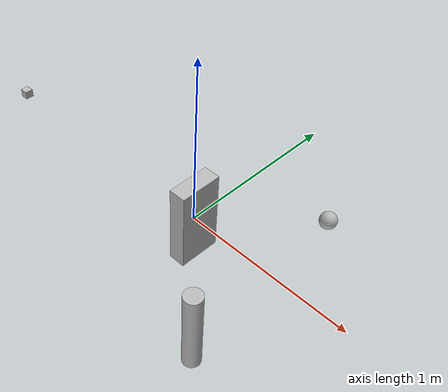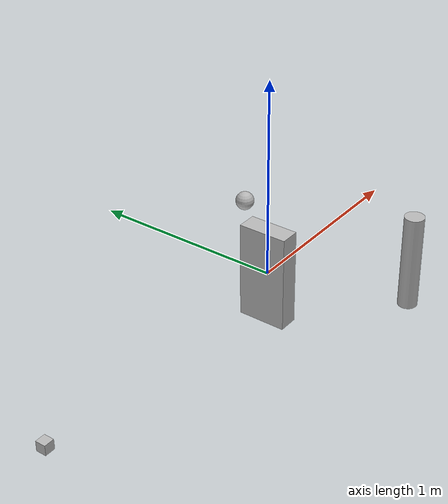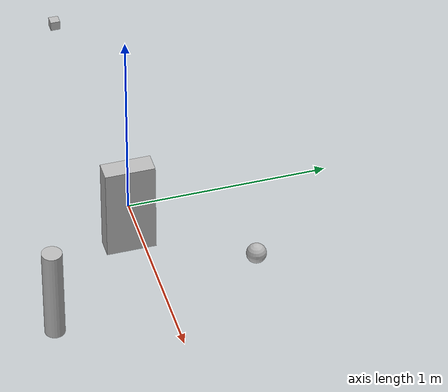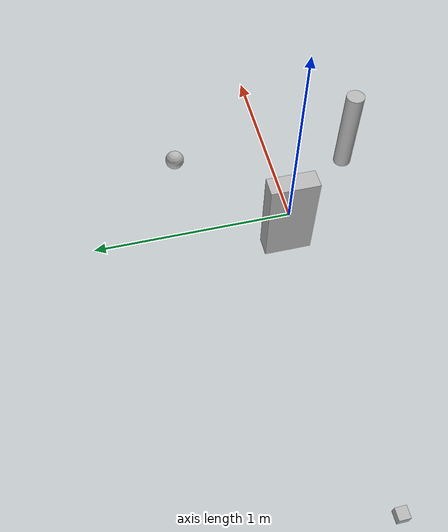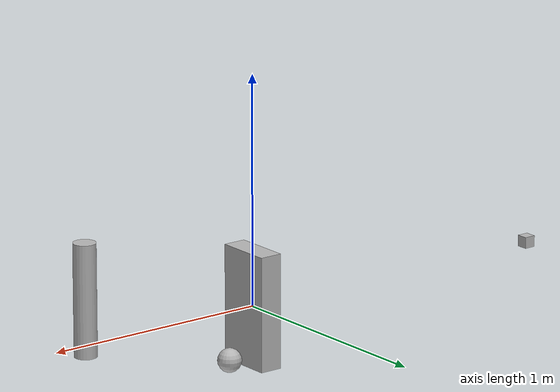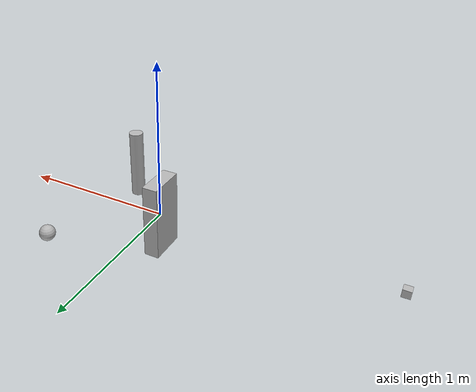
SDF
<?xml version="1.0" encoding="UTF-8"?>
<sdf version="1.6">
  <world name="ray_sensor_demo">
    <gravity>0 0 0</gravity>

    <include>
      <uri>model://sun</uri>
    </include>

    <model name="ray_sensor_box">
      <pose>-1.5 0.0 0.0 0.0 0.0 0.0</pose>
      <link name="ray_link">
        <visual name="visual_box">
          <geometry>
            <box>
              <size>0.05 0.05 0.05</size>
            </box>
          </geometry>
        </visual>
        <collision name="collision_box">
          <geometry>
            <box>
              <size>0.05 0.05 0.05</size>
            </box>
          </geometry>
          <laser_retro>100.0</laser_retro>
        </collision>

        <!-- ray sensor -->
        <sensor name="sensor_ray" type="ray">
          <ray>
            <scan>
              <horizontal>
                <samples>300</samples>
                <resolution>1.0</resolution>
                <min_angle>-0.5236</min_angle>
                <max_angle>0.5236</max_angle>
              </horizontal>
              <vertical>
                <samples>100</samples>
                <resolution>1.0</resolution>
                <min_angle>-0.5236</min_angle>
                <max_angle>0.5236</max_angle>
              </vertical>
            </scan>
            <range>
              <min>0.05</min>
              <max>50.0</max>
            </range>
          </ray>
          <always_on>true</always_on>
          <update_rate>1.0</update_rate>
          <plugin name="pc2" filename="libgazebo_ros_ray_sensor.so">
            <ros>
              <namespace>/ray</namespace>
              <remapping>~/out:=pointcloud2</remapping>
            </ros>
            <output_type>sensor_msgs/PointCloud2</output_type>
          </plugin>
          <plugin name="pc" filename="libgazebo_ros_ray_sensor.so">
            <ros>
              <namespace>/ray</namespace>
              <remapping>~/out:=pointcloud</remapping>
            </ros>
            <output_type>sensor_msgs/PointCloud</output_type>
          </plugin>
          <plugin name="laserscan" filename="libgazebo_ros_ray_sensor.so">
            <ros>
              <namespace>/ray</namespace>
              <remapping>~/out:=laserscan</remapping>
            </ros>
            <output_type>sensor_msgs/LaserScan</output_type>
          </plugin>
          <plugin name="range" filename="libgazebo_ros_ray_sensor.so">
            <ros>
              <namespace>/ray</namespace>
              <remapping>~/out:=range</remapping>
            </ros>
            <output_type>sensor_msgs/Range</output_type>
          </plugin>
        </sensor>

        <!-- gpu_ray sensor producing PointCloud / LaserScan -->
        <sensor name="sensor_gpu_ray" type="gpu_ray">
          <ray>
            <scan>
              <horizontal>
                <samples>300</samples>
                <resolution>1.0</resolution>
                <min_angle>-0.5236</min_angle>
                <max_angle>0.5236</max_angle>
              </horizontal>
            </scan>
            <range>
              <min>0.05</min>
              <max>50.0</max>
            </range>
          </ray>
          <always_on>true</always_on>
          <update_rate>1.0</update_rate>
          <plugin name="pc2_gpu" filename="libgazebo_ros_ray_sensor.so">
            <ros>
              <namespace>/gpu_ray</namespace>
              <remapping>~/out:=pointcloud2</remapping>
            </ros>
            <output_type>sensor_msgs/PointCloud2</output_type>
          </plugin>
          <plugin name="pc_gpu" filename="libgazebo_ros_ray_sensor.so">
            <ros>
              <namespace>/gpu_ray</namespace>
              <remapping>~/out:=pointcloud</remapping>
            </ros>
            <output_type>sensor_msgs/PointCloud</output_type>
          </plugin>
          <plugin name="laserscan_gpu" filename="libgazebo_ros_ray_sensor.so">
            <ros>
              <namespace>/gpu_ray</namespace>
              <remapping>~/out:=laserscan</remapping>
            </ros>
            <output_type>sensor_msgs/LaserScan</output_type>
          </plugin>
          <plugin name="range_gpu" filename="libgazebo_ros_ray_sensor.so">
            <ros>
              <namespace>/gpu_ray</namespace>
              <remapping>~/out:=range</remapping>
            </ros>
            <output_type>sensor_msgs/Range</output_type>
          </plugin>
        </sensor>

      </link>
    </model>

    <model name="box">
      <pose>0.0 0.0 0.0 0.0 0.0 0.0</pose>
      <link name="base_link">
        <visual name="visual">
          <geometry>
            <box>
              <size>0.1 0.25 0.5</size>
            </box>
          </geometry>
        </visual>
        <collision name="collision">
          <geometry>
            <box>
              <size>0.1 0.25 0.5</size>
            </box>
          </geometry>
          <laser_retro>100.0</laser_retro>
        </collision>
      </link>
    </model>

    <model name="sphere">
      <pose>0.5 0.5 0.0 0.0 0.0 0.0</pose>
      <link name="base_link">
        <visual name="visual">
          <geometry>
            <sphere>
              <radius>0.05</radius>
            </sphere>
          </geometry>
        </visual>
        <collision name="collision">
          <geometry>
            <sphere>
              <radius>0.05</radius>
            </sphere>
          </geometry>
          <laser_retro>80.0</laser_retro>
        </collision>
      </link>
    </model>

    <model name="cylinder">
      <pose>0.5 -0.5 0.0 0.0 0.0 0.0</pose>
      <link name="base_link">
        <visual name="visual">
          <geometry>
            <cylinder>
              <radius>0.05</radius>
              <length>0.5</length>
            </cylinder>
          </geometry>
        </visual>
        <collision name="collision">
          <geometry>
            <cylinder>
              <radius>0.05</radius>
              <length>0.5</length>
            </cylinder>
          </geometry>
          <laser_retro>60.0</laser_retro>
        </collision>
      </link>
    </model>

  </world>
</sdf>
